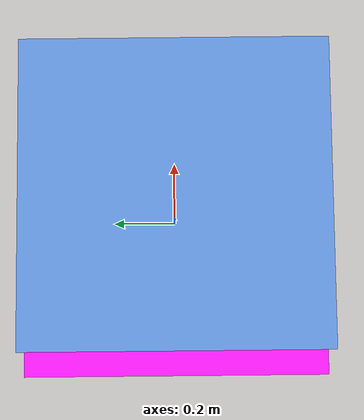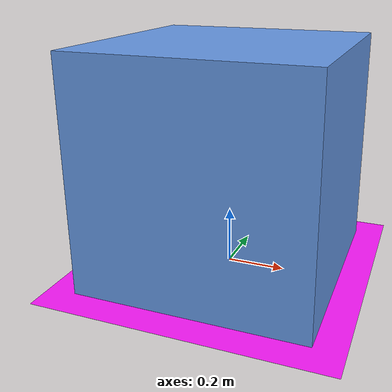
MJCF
<mujoco model="table_arena">
  <asset>
    <texture builtin="flat" height="480" rgb1=".3 1 1" type="skybox" width="640"/>
    <texture builtin="flat" height="512" name="texplane" rgb1="1 .1 1" rgb2=".2 1 .6" type="2d" width="512"/>
    <texture builtin="flat" height="512" name="textable" width="512" rgb1="0.4 0.6 0.9"/>
    <material name="floorplane" texture="texplane" shininess="0"/>
    <material name="table_mat" texture="textable" />
    <material name="cube_mat" texture="textable" />
  </asset>
  <worldbody>
    <geom condim="3" material="floorplane" name="floor" pos="0 0 0" size="0.5 0.5 .125" type="plane"/>
    <body name="table" pos="0 0 0.4">
      <geom pos="0 0 0" size="0.4 0.4 0.4" type="box" name="table_collision" material="table_mat" friction="1 0.005 0.0001" />
      <geom pos="0 0 0" size="0.4 0.4 0.4" type="box" conaffinity="0" contype="0" group="1" name="table_visual" material="table_mat" />
      <!-- TODO: .18 here? -->
      <site pos="0 0 0.4" name="table_top" size="0.001 0.001 0.001" rgba="0 0 0 0"/>
    </body>

    <light name="light1" diffuse=".8 .8 .8" dir="0 -.15 -1" directional="false" pos="1 1 4.0" specular="0.3 0.3 0.3" castshadow="false"/>
    <light name="light2" diffuse=".8 .8 .8" dir="0 -.15 -1" directional="false" pos="-3. -3. 4.0" specular="0.3 0.3 0.3" castshadow="false"/>

    <!-- Lights for domain randomization -->
    <!-- TODO: Figure out why active tag does not change on randomization -->
    <!-- TODO: These are needed for domain randomization but bad for sim2real (weird shadows) -->
    <light name="light3" diffuse=".8 .8 .8" dir="0 -.15 -1" directional="false" pos="-3. -3. 4.0" specular="0.3 0.3 0.3" castshadow="false"/>
    <light name="light4" diffuse=".8 .8 .8" dir="0 -.15 -1" directional="false" pos="-3. -3. 4.0" specular="0.3 0.3 0.3" castshadow="false"/>
    <light name="light5" diffuse=".8 .8 .8" dir="0 -.15 -1" directional="false" pos="-3. -3. 4.0" specular="0.3 0.3 0.3" castshadow="false"/>
    <light name="light6" diffuse=".8 .8 .8" dir="0 -.15 -1" directional="false" pos="-3. -3. 4.0" specular="0.3 0.3 0.3" castshadow="false"/>
    <light name="light7" diffuse=".8 .8 .8" dir="0 -.15 -1" directional="false" pos="-3. -3. 4.0" specular="0.3 0.3 0.3" castshadow="false"/>

    <!-- front view -->
    <camera mode="fixed" name="frontview" pos="1.6 0 1.45" quat="0.56 0.43 0.43 0.56"/>
    <!-- bird view -->
    <camera mode="fixed" name="birdview" pos="-0.2 0 3.0" quat="0.7071 0 0 0.7071"/>
    <!-- agent view -->
    <!-- TODO: Adjust camera to match real world view -->
    <camera mode="fixed" name="agentview" pos="0.4 0.027181233231036377 1.2014" quat="0.6327776 0.3155829 0.3155829 0.6327776" fovy="45"/>
  </worldbody>
</mujoco>
